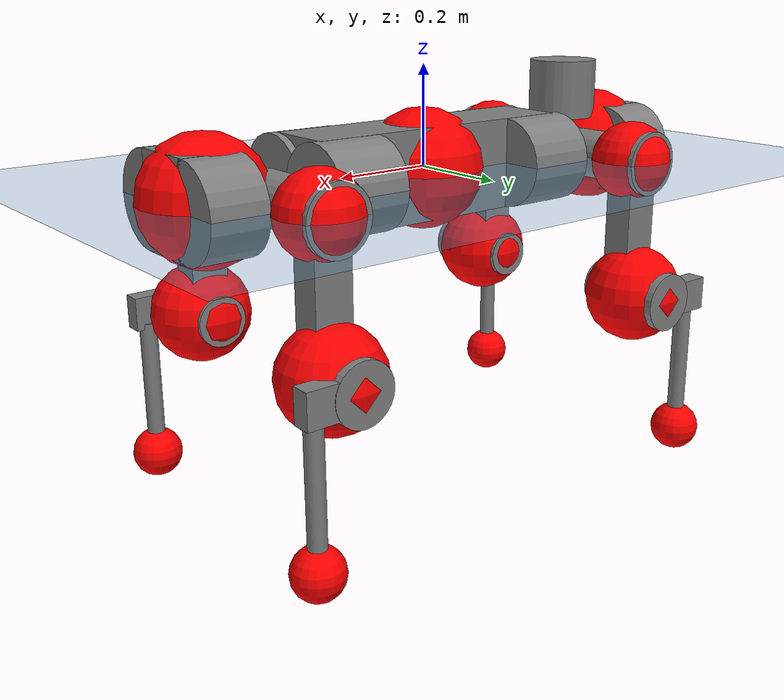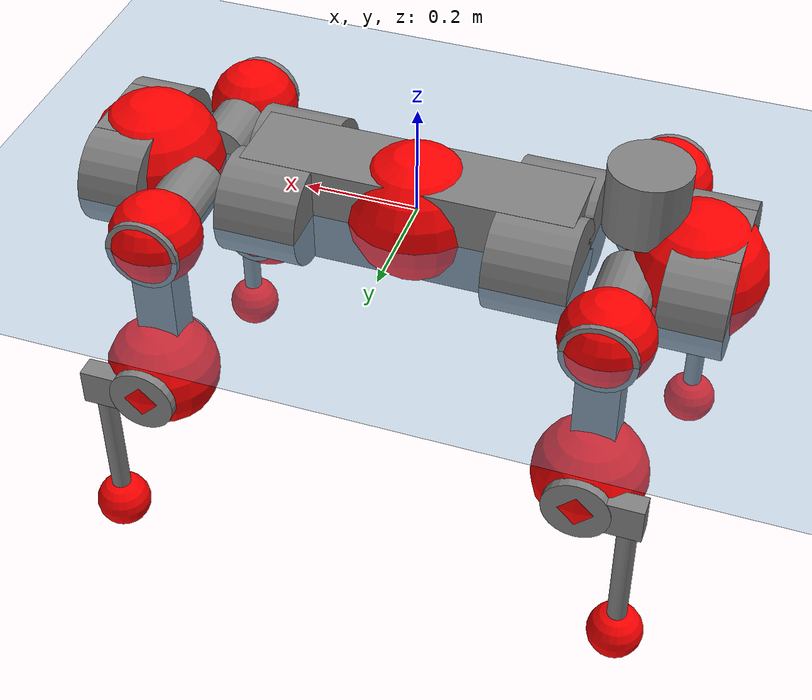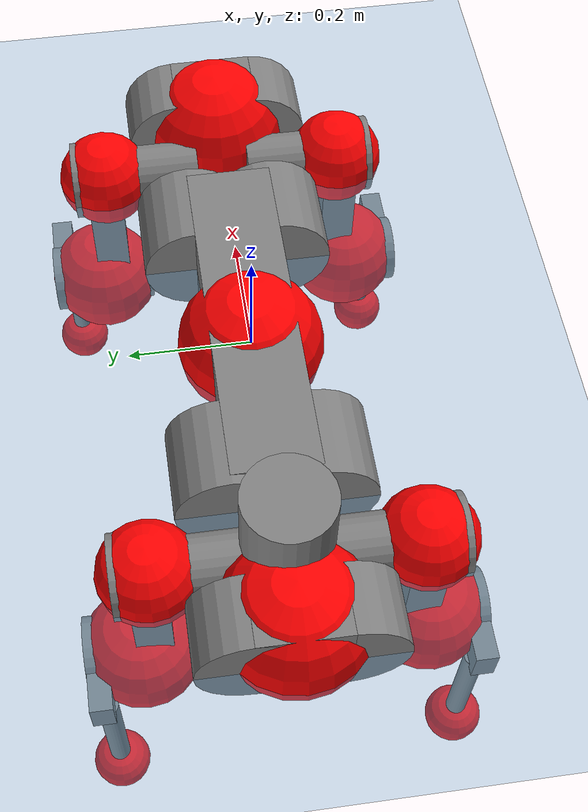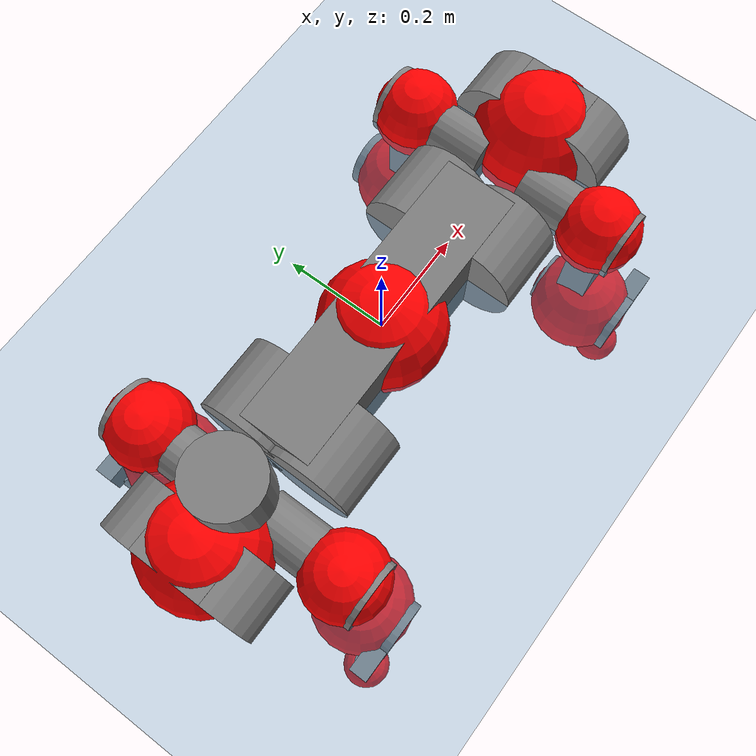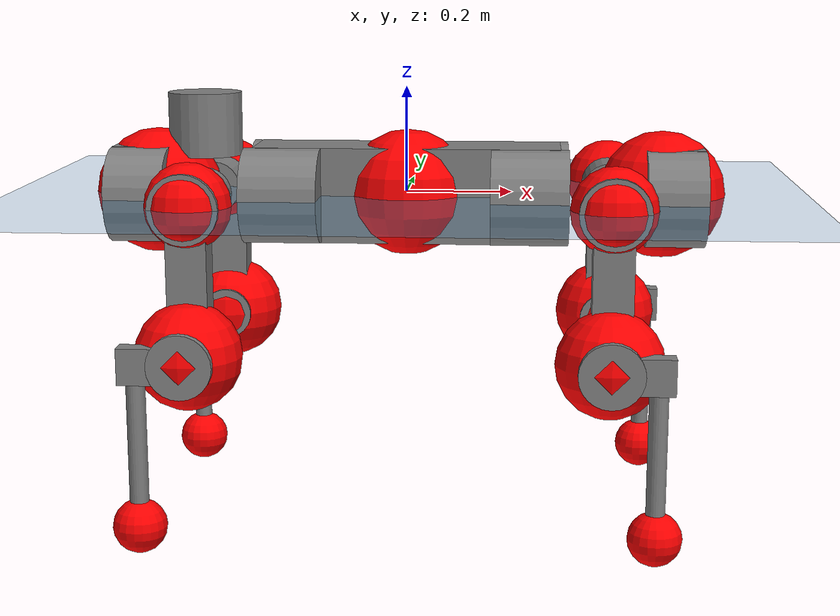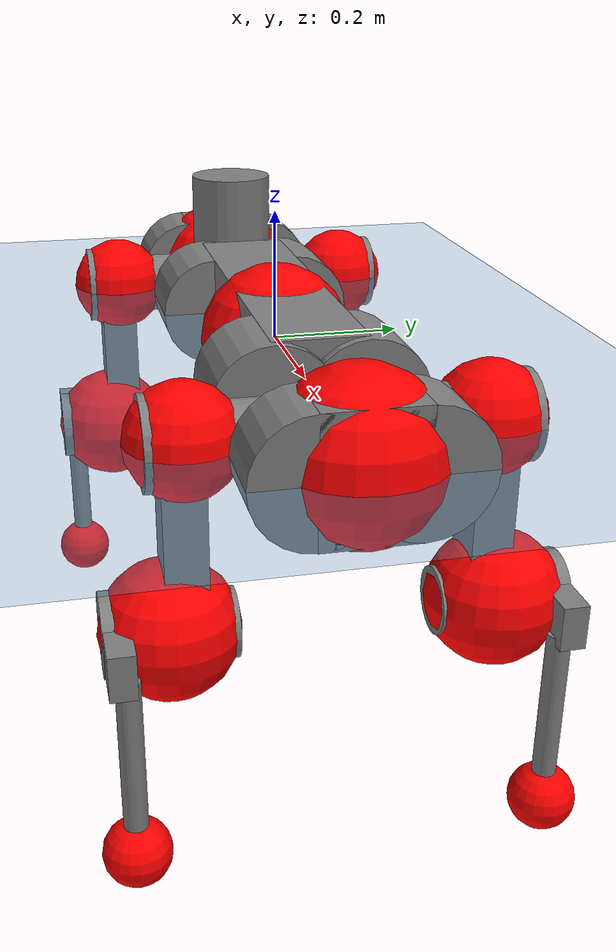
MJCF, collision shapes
<mujoco model="anymal_c">
  <compiler angle="radian" assetdir="assets" balanceinertia="true" inertiafromgeom="false"/>

  <option timestep="0.005" density="1.2" viscosity="2e-05"/>

  <size nkey="1"/>

  <visual>
    <quality shadowsize="8192"/>
    <map shadowclip="0.5"/>
  </visual>

  <default>
    <default class="/">
      <material specular="0" shininess="0.25"/>
      <geom contype="0" conaffinity="0" group="1" solref="-1000 -80"/>
      <site size="0.01 0.005 0.005" group="5"/>
      <general forcelimited="true" forcerange="-80 80" biastype="affine" gainprm="80" biasprm="0 -80 -2"/>
      <default class="anymal_c">
        <joint armature="0.01" damping="0.01" frictionloss="0.1"/>
        <default class="visual">
          <geom type="mesh" group="2"/>
          <default class="visual_zflip"/>
        </default>
        <default class="collision">
          <geom type="cylinder" group="3"/>
          <default class="foot">
            <geom size="0.03 0 0" type="sphere" condim="6" priority="1" friction="0.8 0.02 0.01" solimp="0.015 1 0.03"/>
          </default>
        </default>
      </default>
      <default class="reward_collision_sphere">
        <geom group="5" rgba="1 0 0 1"/>
      </default>
    </default>
  </default>

  <asset>
    <texture type="skybox" colorspace="auto" name="//unnamed_texture_0" builtin="gradient" rgb1="0.95 0.95 0.95" rgb2="0.95 0.95 0.95" width="100" height="600"/>
    <texture type="2d" colorspace="auto" name="texplane" builtin="checker" rgb1="0.345 0.575 0.748" rgb2="0.345 0.575 0.748" markrgb="1 1 1" width="512" height="512"/>
    <texture type="2d" colorspace="linear" name="base" file="base.png"/>
    <texture type="2d" colorspace="linear" name="top_shell" file="top_shell.png"/>
    <texture type="2d" colorspace="linear" name="bottom_shell" file="bottom_shell.png"/>
    <texture type="2d" colorspace="linear" name="remote" file="remote.png"/>
    <texture type="2d" colorspace="linear" name="hatch" file="hatch.png"/>
    <texture type="2d" colorspace="linear" name="handle" file="handle.png"/>
    <texture type="2d" colorspace="linear" name="face" file="face.png"/>
    <texture type="2d" colorspace="linear" name="battery" file="battery.png"/>
    <texture type="2d" colorspace="linear" name="lidar_cage" file="lidar_cage.png"/>
    <texture type="2d" colorspace="linear" name="depth_camera" file="depth_camera.png"/>
    <texture type="2d" colorspace="linear" name="wide_angle_camera" file="wide_angle_camera.png"/>
    <texture type="2d" colorspace="linear" name="lidar" file="lidar.png"/>
    <texture type="2d" colorspace="linear" name="drive" file="drive.png"/>
    <texture type="2d" colorspace="linear" name="hip_l" file="hip_l.png"/>
    <texture type="2d" colorspace="linear" name="shank_l" file="shank_l.png"/>
    <texture type="2d" colorspace="linear" name="foot" file="foot.png"/>
    <texture type="2d" colorspace="linear" name="thigh" file="thigh.png"/>
    <texture type="2d" colorspace="linear" name="shank_r" file="shank_r.png"/>
    <texture type="2d" colorspace="linear" name="hip_r" file="hip_r.png"/>
    <material name="MatPlane" class="/" texture="texplane" texuniform="true" texrepeat="2 2" specular="0.9" shininess="0.5"/>
    <material name="black_plastic" class="/" rgba="0.007 0.007 0.007 1"/>
    <material name="green" class="/" rgba="0.052 0.178 0.033 1"/>
    <material name="red" class="/" rgba="0.178 0.006 0.005 1"/>
    <material name="yellow" class="/" rgba="0.178 0.119 0.006 1"/>
    <material name="lwl" class="/" rgba="0.8 0.8 0.8 1"/>
    <material name="base" class="/" texture="base"/>
    <material name="top_shell" class="/" texture="top_shell"/>
    <material name="bottom_shell" class="/" texture="bottom_shell"/>
    <material name="hip_l" class="/" texture="hip_l"/>
    <material name="thigh" class="/" texture="thigh"/>
    <material name="shank_l" class="/" texture="shank_l"/>
    <material name="foot" class="/" texture="foot"/>
    <material name="hip_r" class="/" texture="hip_r"/>
    <material name="shank" class="/" texture="shank_r"/>
    <material name="hatch" class="/" texture="hatch"/>
    <material name="remote" class="/" texture="remote"/>
    <material name="handle" class="/" texture="handle"/>
    <material name="face" class="/" texture="face"/>
    <material name="depth_camera" class="/" texture="depth_camera"/>
    <material name="wide_angle_camera" class="/" texture="wide_angle_camera"/>
    <material name="battery" class="/" texture="battery"/>
    <material name="lidar_cage" class="/" texture="lidar_cage"/>
    <material name="lidar" class="/" texture="lidar"/>
    <material name="drive" class="/" texture="drive"/>
    <mesh name="base_0" class="/" file="base_0.obj"/>
    <mesh name="base_1" class="/" file="base_1.obj"/>
    <mesh name="base_2" class="/" file="base_2.obj"/>
    <mesh name="base_3" class="/" file="base_3.obj"/>
    <mesh name="base_4" class="/" file="base_4.obj"/>
    <mesh name="base_5" class="/" file="base_5.obj"/>
    <mesh name="top_shell" class="/" file="top_shell.obj"/>
    <mesh name="bottom_shell" class="/" file="bottom_shell.obj"/>
    <mesh name="remote" class="/" file="remote.obj"/>
    <mesh name="handle" class="/" file="handle.obj"/>
    <mesh name="face" class="/" file="face.obj"/>
    <mesh name="wide_angle_camera" class="/" file="wide_angle_camera.obj"/>
    <mesh name="depth_camera" class="/" file="depth_camera.obj"/>
    <mesh name="battery" class="/" file="battery.obj"/>
    <mesh name="lidar_cage" class="/" file="lidar_cage.obj"/>
    <mesh name="lidar" class="/" file="lidar.obj"/>
    <mesh name="drive" class="/" file="drive.obj"/>
    <mesh name="hip_l" class="/" file="hip_l.obj"/>
    <mesh name="thigh" class="/" file="thigh.obj"/>
    <mesh name="shank_l" class="/" file="shank_l.obj"/>
    <mesh name="foot" class="/" file="foot.obj"/>
    <mesh name="hip_r" class="/" file="hip_r.obj"/>
    <mesh name="hatch" class="/" file="hatch.obj"/>
    <mesh name="shank_r" class="/" file="shank_r.obj"/>
  </asset>

  <worldbody>
    <geom name="floor" class="/" size="100 100 0.125" type="plane" group="0" material="MatPlane"/>
    <light name="toplight_shadow" class="/" pos="0 0 5" dir="0.0990148 0.0990148 -0.990148" type="directional" ambient="0.04 0.04 0.04" diffuse="0.55 0.55 0.55" specular="0.12 0.12 0.12"/>
    <light name="toplight_fill" class="/" pos="0 0 5" dir="0.0990148 0.0990148 -0.990148" type="directional" castshadow="false" ambient="0.04 0.04 0.04" diffuse="0.3 0.3 0.3" specular="0.08 0.08 0.08"/>
    <body name="trunk" childclass="anymal_c" pos="0.00205377 0.000513755 -0.0017085" quat="0.999999 -0.000718754 -0.000293373 -0.000988922">
      <inertial pos="0.000238837 0.00115855 0.0477996" quat="0.496364 0.49946 0.502187 0.501967" mass="18.6873" diaginertia="0.903021 0.510678 0.184624"/>
      <joint name="//unnamed_joint_0" type="free" armature="0" damping="0" frictionloss="0"/>
      <geom name="//unnamed_geom_1" class="visual" material="green" mesh="base_0"/>
      <geom name="//unnamed_geom_2" class="visual" material="yellow" mesh="base_1"/>
      <geom name="//unnamed_geom_3" class="visual" material="red" mesh="base_2"/>
      <geom name="//unnamed_geom_4" class="visual" material="black_plastic" mesh="base_3"/>
      <geom name="//unnamed_geom_5" class="visual" material="lwl" mesh="base_4"/>
      <geom name="//unnamed_geom_6" class="visual" material="base" mesh="base_5"/>
      <geom name="trunk_1" class="collision" size="0.290267 0.0700644 0.0900828" type="box"/>
      <geom name="trunk_2" class="collision" size="0.0900828 0.0725667" pos="0.23333 0.0673697 0" quat="0.707107 0 0.707107 0"/>
      <geom name="trunk_3" class="collision" size="0.0900828 0.0725667" pos="-0.23333 0.0673697 0" quat="0.707107 0 0.707107 0"/>
      <geom name="trunk_4" class="collision" size="0.0900828 0.0725667" pos="0.23333 -0.0673697 0" quat="0.707107 0 0.707107 0"/>
      <geom name="trunk_5" class="collision" size="0.0900828 0.0725667" pos="-0.23333 -0.0673697 0" quat="0.707107 0 0.707107 0"/>
      <geom name="//unnamed_geom_12" class="visual" material="top_shell" mesh="top_shell"/>
      <geom name="//unnamed_geom_13" class="visual" material="bottom_shell" mesh="bottom_shell"/>
      <geom name="//unnamed_geom_14" class="visual" material="remote" mesh="remote"/>
      <geom name="//unnamed_geom_15" class="visual" material="handle" mesh="handle"/>
      <geom name="//unnamed_geom_16" class="visual" pos="0.444669 0 0" quat="1 0 0 0" material="face" mesh="face"/>
      <geom name="trunk_6" class="collision" size="0.0550506 0.0700644 0.0900828" pos="0.503672 0 0" type="box"/>
      <geom name="//unnamed_geom_18" class="collision" size="0.0900828 0.0550506" pos="0.503672 0.0673697 0" quat="0.707107 0 0.707107 0"/>
      <geom name="//unnamed_geom_19" class="collision" size="0.0900828 0.0550506" pos="0.503672 -0.0673697 0" quat="0.707107 0 0.707107 0"/>
      <geom name="//unnamed_geom_20" class="visual" pos="0.495246 0 -0.0274527" quat="0.965926 0 0.258819 0" material="depth_camera" mesh="depth_camera"/>
      <geom name="//unnamed_geom_21" class="visual" pos="0.550338 0 0.0144842" material="wide_angle_camera" mesh="wide_angle_camera"/>
      <geom name="//unnamed_geom_22" class="visual_zflip" pos="-0.444669 0 0" quat="0 0 0 1" material="face" mesh="face"/>
      <geom name="trunk_7" class="collision" size="0.0550506 0.0700644 0.0900828" pos="-0.503672 0 0" quat="0 0 0 1" type="box"/>
      <geom name="//unnamed_geom_24" class="collision" size="0.0900828 0.0550506" pos="-0.503672 -0.0673697 0" quat="0 -0.707107 0 0.707107"/>
      <geom name="//unnamed_geom_25" class="collision" size="0.0900828 0.0550506" pos="-0.503672 0.0673697 0" quat="0 -0.707107 0 0.707107"/>
      <geom name="//unnamed_geom_26" class="visual" pos="-0.495246 0 -0.0274527" quat="0 -0.258819 0 0.965926" material="depth_camera" mesh="depth_camera"/>
      <geom name="//unnamed_geom_27" class="visual_zflip" pos="-0.550338 0 0.0144842" quat="0 0 0 1" material="wide_angle_camera" mesh="wide_angle_camera"/>
      <geom name="//unnamed_geom_28" class="visual" material="battery" mesh="battery"/>
      <geom name="//unnamed_geom_29" class="visual" pos="0 0.0721345 0.0289071" quat="0.683013 -0.183013 0.183013 0.683013" material="depth_camera" mesh="depth_camera"/>
      <geom name="//unnamed_geom_30" class="visual" pos="0 -0.0721345 0.0289071" quat="0.683013 0.183013 0.183013 -0.683013" material="depth_camera" mesh="depth_camera"/>
      <geom name="//unnamed_geom_31" class="visual" pos="-0.390493 0 0.071115" quat="1 0 0 0" material="lidar_cage" mesh="lidar_cage"/>
      <geom name="trunk_8" class="collision" size="0.0700644 0.0600552" pos="-0.390493 0 0.129168"/>
      <geom name="//unnamed_geom_33" class="visual" pos="-0.390493 -4.3357e-05 0.137586" quat="0.707107 0 0 -0.707107" material="lidar" mesh="lidar"/>
      <geom name="//unnamed_geom_34" class="visual" pos="0.321728 0.100094 -8.84211e-11" quat="0.258819 0.965926 0 0" material="drive" mesh="drive"/>
      <geom name="//unnamed_geom_35" class="visual" pos="0.321728 -0.100094 8.84211e-11" quat="0.258819 -0.965926 0 0" material="drive" mesh="drive"/>
      <geom name="//unnamed_geom_36" class="visual" pos="-0.321728 0.100094 8.84211e-11" quat="0 0 0.965926 -0.258819" material="drive" mesh="drive"/>
      <geom name="//unnamed_geom_37" class="visual" pos="-0.321728 -0.100094 -8.84211e-11" quat="0 0 -0.965926 -0.258819" material="drive" mesh="drive"/>
      <geom name="//unnamed_geom_38" class="visual" pos="0.124443 0 0.0706312" quat="1 0 0 0" material="hatch" mesh="hatch"/>
      <geom name="//unnamed_geom_39" class="reward_collision_sphere" size="0.12011"/>
      <geom name="//unnamed_geom_40" class="reward_collision_sphere" size="0.12011" pos="0.482753 0 0"/>
      <geom name="//unnamed_geom_41" class="reward_collision_sphere" size="0.12011" pos="-0.482753 0 0"/>
      <site name="imu" pos="0.270401 0.0188179 0.0578575" size="0.0100092"/>
      <camera name="track" pos="0 -1.92485 0" quat="0.707107 0.707107 0 0" mode="trackcom"/>
      <camera name="ego_camera" pos="0.482753 0 -0.038702" quat="-0.5 -0.5 0.5 0.5"/>
      <body name="LF_HIP" pos="0.32207 0.101127 0.000548454" quat="0.25909 0.965853 0.000685814 9.1241e-05">
        <inertial pos="0.0602719 -0.017121 -0.00672969" quat="-0.132154 0.710375 -0.134387 0.678117" mass="2.70541" diaginertia="0.00845894 0.00412736 0.00279483"/>
        <joint name="LF_HAA" pos="0 0 0" axis="0.999925 -0.0110357 0.00530726" range="-0.674656 0.510531" armature="0.00992" damping="0.0198132" frictionloss="0.0984253"/>
        <geom name="//unnamed_geom_42" class="visual" pos="0 -5.20141e-06 8.54328e-07" quat="0.258819 -0.965926 0 0" material="hip_l" mesh="hip_l"/>
        <geom name="//unnamed_geom_43" class="visual" pos="0.0642597 -0.0764131 -0.0441551" quat="0.183013 -0.683013 0.683013 0.183013" material="drive" mesh="drive"/>
        <geom name="//unnamed_geom_44" class="collision" size="0.050046 0.0700644" pos="0.0642597 -0.0115104 -0.00668094" quat="-0.353553 -0.612372 0.612372 -0.353553"/>
        <body name="LF_THIGH" pos="0.0666409 -0.0701386 -0.0379965" quat="0.18393 -0.683319 0.682274 0.1837">
          <inertial pos="0.03608 -0.00245808 -0.240274" quat="0.993171 -0.0051483 -0.0805026 0.0842841" mass="2.98665" diaginertia="0.0424426 0.0236578 0.00350578"/>
          <joint name="LF_HFE" pos="0 0 0" axis="0.999999 -0.00160588 0.000427377" range="-3.11944 3.1449" armature="0.00948895" damping="0.0144823" frictionloss="0.0970336"/>
          <geom name="//unnamed_geom_45" class="visual" pos="0.00219571 3.45992e-06 0" quat="0.707107 0 0 -0.707107" material="thigh" mesh="thigh"/>
          <geom name="//unnamed_geom_46" class="collision" size="0.0650598 0.0400368" pos="0.0429113 0 0" quat="0.5 0.5 -0.5 -0.5"/>
          <geom name="//unnamed_geom_47" class="collision" size="0.0375345 0.0300276 0.141444" pos="0.0321835 0 -0.136728" quat="0.707107 0 0 -0.707107" type="box"/>
          <geom name="//unnamed_geom_48" class="visual" pos="0.1076 0 -0.275752" quat="1 0 0 0" material="drive" mesh="drive"/>
          <geom name="//unnamed_geom_49" class="collision" size="0.050046 0.0700644" pos="0.0325053 0 -0.275752" quat="0.707107 0 0.707107 0"/>
          <geom name="//unnamed_geom_50" class="reward_collision_sphere" size="0.0800736" pos="0.0268196 0 0"/>
          <body name="LF_SHANK" pos="0.106774 -0.00294669 -0.275766" quat="0.999999 0.00121904 -0.000323595 -0.000470935">
            <inertial pos="0.00306294 -0.0591681 -0.0754222" quat="0.99265 -0.118036 -0.0057318 -0.0260934" mass="0.58899" diaginertia="0.014348 0.00806022 0.000973464"/>
            <joint name="LF_KFE" pos="0 0 0" axis="0.999987 -0.0048914 0.00111556" stiffness="0.000498133" range="-3.19146 3.13495" armature="0.0109227" damping="0" frictionloss="0.110259"/>
            <geom name="//unnamed_geom_51" class="visual" pos="0.000715972 0.0038176 0" quat="0.707107 0 0 -0.707107" material="shank_l" mesh="shank_l"/>
            <geom name="LF_kfe_act" class="collision" size="0.0600552 0.0200184" pos="0.0214557 0 0" quat="0.5 0.5 -0.5 -0.5"/>
            <geom name="//unnamed_geom_53" class="collision" size="0.0575519 0.033781 0.0190175" pos="0.0214557 -0.0553385 0" quat="0.5 0.5 -0.5 -0.5" type="box"/>
            <geom name="//unnamed_geom_54" class="visual" pos="0.0139997 -0.083415 -0.327003" quat="0.382683 0 0 -0.92388" material="foot" mesh="foot"/>
            <geom name="LF_calf" class="collision" size="0.0175161 0.141382" pos="0.0139998 -0.0846453 -0.163502" quat="0.707107 0 0 -0.707107"/>
            <geom name="LF_foot" class="foot" size="0.0311094" pos="0.0139998 -0.0846453 -0.305233" quat="0.707107 0 0 -0.707107"/>
            <geom name="//unnamed_geom_57" class="reward_collision_sphere" size="0.100092" pos="-0.0536392 0 0"/>
            <geom name="//unnamed_geom_58" class="reward_collision_sphere" size="0.050046" pos="0.0139998 -0.0846453 -0.305233"/>
            <site name="LF_foot" class="foot" pos="0.0139998 -0.0846453 -0.305233" quat="0.707107 0 0 -0.707107" size="0.0100092"/>
          </body>
        </body>
      </body>
      <body name="RF_HIP" pos="0.321102 -0.0999187 -0.00229545" quat="0.259626 -0.965708 0.00126972 0.00035203">
        <inertial pos="0.06298 0.0124521 -0.00783513" quat="0.122995 0.684784 0.127938 0.706806" mass="2.76047" diaginertia="0.00780846 0.00394741 0.00262416"/>
        <joint name="RF_HAA" pos="0 0 0" axis="0.999966 -0.00423163 0.00708003" range="-0.483881 0.723633" armature="0.0100579" damping="0.00725" frictionloss="0.0862566"/>
        <geom name="//unnamed_geom_59" class="visual" pos="0 5.20137e-06 8.54326e-07" quat="0.258819 0.965926 0 0" material="hip_r" mesh="hip_r"/>
        <geom name="//unnamed_geom_60" class="visual" pos="0.0642597 0.0764131 -0.0441551" quat="0.183013 0.683013 0.683013 -0.183013" material="drive" mesh="drive"/>
        <geom name="//unnamed_geom_61" class="collision" size="0.050046 0.0700644" pos="0.0642597 0.0115104 -0.00668094" quat="-0.353553 0.612372 0.612372 0.353553"/>
        <body name="RF_THIGH" pos="0.064425 0.0674852 -0.0398463" quat="0.182675 0.682825 0.683227 -0.183251">
          <inertial pos="0.0354223 -0.00285096 -0.236591" quat="0.993157 -0.0154758 -0.0729772 0.0898599" mass="3.10326" diaginertia="0.0424311 0.0240023 0.0035885"/>
          <joint name="RF_HFE" pos="0 0 0" axis="0.999998 -0.00111735 -0.00144542" range="-3.12006 3.19596" armature="0.00991606" damping="0.0138467" frictionloss="0.107496"/>
          <geom name="//unnamed_geom_62" class="visual" pos="0.00219571 3.45992e-06 0" quat="0.707107 0 0 -0.707107" material="thigh" mesh="thigh"/>
          <geom name="//unnamed_geom_63" class="collision" size="0.0650598 0.0400368" pos="0.0429113 0 0" quat="0.5 0.5 0.5 0.5"/>
          <geom name="//unnamed_geom_64" class="collision" size="0.0375345 0.0300276 0.141444" pos="0.0321835 0 -0.136728" quat="0.707107 0 0 0.707107" type="box"/>
          <geom name="//unnamed_geom_65" class="visual" pos="0.1076 0 -0.275752" quat="1 0 0 0" material="drive" mesh="drive"/>
          <geom name="//unnamed_geom_66" class="collision" size="0.050046 0.0700644" pos="0.0325053 0 -0.275752" quat="0.707107 0 0.707107 0"/>
          <geom name="//unnamed_geom_67" class="reward_collision_sphere" size="0.0800736" pos="0.0268196 0 0"/>
          <body name="RF_SHANK" pos="0.106997 -0.00262825 -0.276503" quat="1 1.24535e-05 -4.92711e-05 5.38184e-05">
            <inertial pos="0.00589392 0.0586267 -0.0773123" quat="0.993945 0.104957 0.001274 0.0324887" mass="0.591677" diaginertia="0.0144868 0.00764123 0.000918911"/>
            <joint name="RF_KFE" pos="0 0 0" axis="0.999968 -0.00704942 0.00384997" range="-3.15692 3.19094" armature="0.00978204" damping="0.0235794" frictionloss="0.0943876"/>
            <geom name="//unnamed_geom_68" class="visual" pos="0.000715968 -0.00381759 0" quat="0.707107 0 0 0.707107" material="shank" mesh="shank_r"/>
            <geom name="RF_kfe_act" class="collision" size="0.0600552 0.0200184" pos="0.0214557 0 0" quat="0.5 0.5 0.5 0.5"/>
            <geom name="//unnamed_geom_70" class="collision" size="0.0575519 0.033781 0.0190175" pos="0.0214557 0.0553385 0" quat="0.5 0.5 0.5 0.5" type="box"/>
            <geom name="//unnamed_geom_71" class="visual" pos="0.014 0.083415 -0.327003" quat="0.382683 0 0 0.92388" material="foot" mesh="foot"/>
            <geom name="RF_calf" class="collision" size="0.0175161 0.141382" pos="0.0139998 0.0846453 -0.163502" quat="0.707107 0 0 0.707107"/>
            <geom name="RF_foot" class="foot" size="0.0260169" pos="0.0139998 0.0846453 -0.305233" quat="0.707107 0 0 0.707107"/>
            <geom name="//unnamed_geom_74" class="reward_collision_sphere" size="0.100092" pos="-0.0536392 0 0"/>
            <geom name="//unnamed_geom_75" class="reward_collision_sphere" size="0.050046" pos="0.0139998 0.0846453 -0.305233"/>
            <site name="RF_foot" class="foot" pos="0.0139998 0.0846453 -0.305233" quat="0.707107 0 0 0.707107" size="0.0100092"/>
          </body>
        </body>
      </body>
      <body name="LH_HIP" pos="-0.321636 0.100242 -0.00161617" quat="0.000118505 4.87884e-05 0.965964 -0.258676">
        <inertial pos="0.0618906 0.016888 -0.0108953" quat="0.137918 0.683241 0.133904 0.704436" mass="2.84687" diaginertia="0.00816713 0.00400398 0.00285388"/>
        <joint name="LH_HAA" pos="0 0 0" axis="0.999999 0.000813291 0.000747336" stiffness="0.00398555" range="-0.471948 0.677227" armature="0.00870412" damping="0.00962243" frictionloss="0.113457"/>
        <geom name="//unnamed_geom_76" class="visual" pos="0 5.20137e-06 8.54326e-07" quat="-0.258819 -0.965926 0 0" material="hip_r" mesh="hip_r"/>
        <geom name="//unnamed_geom_77" class="visual" pos="0.0642597 0.0764131 -0.0441551" quat="0.183013 0.683013 0.683013 -0.183013" material="drive" mesh="drive"/>
        <geom name="//unnamed_geom_78" class="collision" size="0.050046 0.0700644" pos="0.0642597 0.0115104 -0.00668094" quat="-0.353553 0.612372 0.612372 0.353553"/>
        <body name="LH_THIGH" pos="0.0642495 0.066909 -0.038801" quat="0.18269 0.683194 0.682955 -0.182873">
          <inertial pos="0.0333403 0.000156466 -0.238489" quat="0.99238 -0.00517475 -0.0818384 0.0919685" mass="3.16216" diaginertia="0.0428879 0.0243123 0.003655"/>
          <joint name="LH_HFE" pos="0 0 0" axis="0.999948 -0.0038254 0.00942477" stiffness="0.00925209" range="-3.14588 3.12797" armature="0.0113414" damping="0" frictionloss="0.100155"/>
          <geom name="//unnamed_geom_79" class="visual" pos="0.00219571 3.45992e-06 0" quat="0.707107 0 0 -0.707107" material="thigh" mesh="thigh"/>
          <geom name="//unnamed_geom_80" class="collision" size="0.0650598 0.0400368" pos="0.0429113 0 0" quat="0.5 0.5 -0.5 -0.5"/>
          <geom name="//unnamed_geom_81" class="collision" size="0.0375345 0.0300276 0.141444" pos="0.0321835 0 -0.136728" quat="0.707107 0 0 -0.707107" type="box"/>
          <geom name="//unnamed_geom_82" class="visual" pos="0.1076 0 -0.275752" quat="1 0 0 0" material="drive" mesh="drive"/>
          <geom name="//unnamed_geom_83" class="collision" size="0.050046 0.0700644" pos="0.0325053 0 -0.275752" quat="0.707107 0 0.707107 0"/>
          <geom name="//unnamed_geom_84" class="reward_collision_sphere" size="0.0800736" pos="0.0268196 0 0"/>
          <body name="LH_SHANK" pos="0.107572 -0.000194634 -0.277941" quat="1 0.000249146 -0.000413299 -0.000168898">
            <inertial pos="0.00522431 0.06105 -0.0785055" quat="0.993136 0.113588 0.00892735 0.0264358" mass="0.592685" diaginertia="0.0141355 0.00764904 0.000929034"/>
            <joint name="LH_KFE" pos="0 0 0" axis="0.999939 0.00501712 -0.00980497" range="-3.13818 3.16994" armature="0.0110581" damping="0" frictionloss="0.111652"/>
            <geom name="//unnamed_geom_85" class="visual" pos="0.000715968 -0.00381759 0" quat="-0.707107 0 0 -0.707107" material="shank" mesh="shank_r"/>
            <geom name="LH_kfe_act" class="collision" size="0.0600552 0.0200184" pos="0.0214557 0 0" quat="0.5 0.5 -0.5 -0.5"/>
            <geom name="//unnamed_geom_87" class="collision" size="0.0575519 0.033781 0.0190175" pos="0.0214557 0.0553385 0" quat="0.5 0.5 -0.5 -0.5" type="box"/>
            <geom name="//unnamed_geom_88" class="visual" pos="0.014 0.083415 -0.327003" quat="-0.382683 0 0 -0.92388" material="foot" mesh="foot"/>
            <geom name="LH_calf" class="collision" size="0.0175161 0.141382" pos="0.0139998 0.0846453 -0.163502" quat="0.707107 0 0 -0.707107"/>
            <geom name="LH_foot" class="foot" size="0.0305463" pos="0.0139998 0.0846453 -0.305233" quat="0.707107 0 0 -0.707107"/>
            <geom name="//unnamed_geom_91" class="reward_collision_sphere" size="0.100092" pos="-0.0536392 0 0"/>
            <geom name="//unnamed_geom_92" class="reward_collision_sphere" size="0.050046" pos="0.0139998 0.0846453 -0.305233"/>
            <site name="LH_foot" class="foot" pos="0.0139998 0.0846453 -0.305233" quat="0.707107 0 0 -0.707107" size="0.0100092"/>
          </body>
        </body>
      </body>
      <body name="RH_HIP" pos="-0.321297 -0.102398 -0.000916397" quat="-0.00055292 -0.000503593 -0.965692 -0.259689">
        <inertial pos="0.0630692 -0.0120637 -0.0105299" quat="-0.117685 0.712931 -0.127069 0.67951" mass="2.78476" diaginertia="0.00823281 0.0040328 0.00280568"/>
        <joint name="RH_HAA" pos="0 0 0" axis="0.999934 0.00162975 -0.0113753" stiffness="0.00505048" range="-0.711624 0.471594" armature="0.00907271" damping="0.0154089" frictionloss="0.0955402"/>
        <geom name="//unnamed_geom_93" class="visual" pos="0 -5.20141e-06 8.54328e-07" quat="-0.258819 0.965926 0 0" material="hip_l" mesh="hip_l"/>
        <geom name="//unnamed_geom_94" class="visual" pos="0.0642597 -0.0764131 -0.0441551" quat="-0.183013 0.683013 -0.683013 -0.183013" material="drive" mesh="drive"/>
        <geom name="//unnamed_geom_95" class="collision" size="0.050046 0.0700644" pos="0.0642597 -0.0115104 -0.00668094" quat="0.353553 0.612372 -0.612372 0.353553"/>
        <body name="RH_THIGH" pos="0.0645104 -0.0721532 -0.043058" quat="-0.183016 0.683015 -0.683011 -0.183008">
          <inertial pos="0.0342802 3.0939e-05 -0.237477" quat="0.992871 -0.00548677 -0.0822733 0.0860755" mass="2.96784" diaginertia="0.0434533 0.025439 0.00353366"/>
          <joint name="RH_HFE" pos="0 0 0" axis="0.999999 0.000149945 -0.00170609" stiffness="0.00196574" range="-3.13905 3.19925" armature="0.0104454" damping="0.00908973" frictionloss="0.0956868"/>
          <geom name="//unnamed_geom_96" class="visual" pos="0.00219571 3.45992e-06 0" quat="0.707107 0 0 -0.707107" material="thigh" mesh="thigh"/>
          <geom name="//unnamed_geom_97" class="collision" size="0.0650598 0.0400368" pos="0.0429113 0 0" quat="0.5 0.5 0.5 0.5"/>
          <geom name="//unnamed_geom_98" class="collision" size="0.0375345 0.0300276 0.141444" pos="0.0321835 0 -0.136728" quat="0.707107 0 0 0.707107" type="box"/>
          <geom name="//unnamed_geom_99" class="visual" pos="0.1076 0 -0.275752" quat="1 0 0 0" material="drive" mesh="drive"/>
          <geom name="//unnamed_geom_100" class="collision" size="0.050046 0.0700644" pos="0.0325053 0 -0.275752" quat="0.707107 0 0.707107 0"/>
          <geom name="//unnamed_geom_101" class="reward_collision_sphere" size="0.0800736" pos="0.0268196 0 0"/>
          <body name="RH_SHANK" pos="0.108495 -0.00093459 -0.272751" quat="1 2.89024e-05 4.05656e-05 -0.000156963">
            <inertial pos="0.00321918 -0.0599732 -0.0784737" quat="0.993901 -0.106719 0.00396216 -0.0274858" mass="0.596424" diaginertia="0.0146648 0.0077001 0.000986174"/>
            <joint name="RH_KFE" pos="0 0 0" axis="0.999895 0.0143471 0.00207219" range="-3.12513 3.12646" armature="0.0100658" damping="0.0218569" frictionloss="0.101053"/>
            <geom name="//unnamed_geom_102" class="visual" pos="0.000715972 0.0038176 0" quat="0.707107 0 0 -0.707107" material="shank_l" mesh="shank_l"/>
            <geom name="RH_kfe_act" class="collision" size="0.0600552 0.0200184" pos="0.0214557 0 0" quat="0.5 0.5 0.5 0.5"/>
            <geom name="//unnamed_geom_104" class="collision" size="0.0575519 0.033781 0.0190175" pos="0.0214557 -0.0553385 0" quat="0.5 0.5 0.5 0.5" type="box"/>
            <geom name="//unnamed_geom_105" class="visual" pos="0.0139997 -0.083415 -0.327003" quat="0.382683 0 0 -0.92388" material="foot" mesh="foot"/>
            <geom name="RH_calf" class="collision" size="0.0175161 0.141382" pos="0.0139998 -0.0846453 -0.163502" quat="0.707107 0 0 0.707107"/>
            <geom name="RH_foot" class="foot" size="0.0275003" pos="0.0139998 -0.0846453 -0.305233" quat="0.707107 0 0 0.707107"/>
            <geom name="//unnamed_geom_108" class="reward_collision_sphere" size="0.100092" pos="-0.0536392 0 0"/>
            <geom name="//unnamed_geom_109" class="reward_collision_sphere" size="0.050046" pos="0.0139998 -0.0846453 -0.305233"/>
            <site name="RH_foot" class="foot" pos="0.0139998 -0.0846453 -0.305233" quat="0.707107 0 0 0.707107" size="0.0100092"/>
          </body>
        </body>
      </body>
    </body>
  </worldbody>

  <contact>
    <pair class="/" geom1="floor" geom2="LF_foot" name="//unnamed_contact_0"/>
    <pair class="/" geom1="floor" geom2="RF_foot" name="//unnamed_contact_1"/>
    <pair class="/" geom1="floor" geom2="LH_foot" name="//unnamed_contact_2"/>
    <pair class="/" geom1="floor" geom2="RH_foot" name="//unnamed_contact_3"/>
  </contact>

  <actuator>
    <general name="LF_HAA" class="/" joint="LF_HAA" forcerange="-80.9486 80.9486" gainprm="83.273" biasprm="0 -83.273 -1.97082"/>
    <general name="LF_HFE" class="/" joint="LF_HFE" forcerange="-73.9023 73.9023" gainprm="83.273" biasprm="0 -83.273 -1.97082"/>
    <general name="LF_KFE" class="/" joint="LF_KFE" forcerange="-82.4558 82.4558" gainprm="83.273" biasprm="0 -83.273 -1.97082"/>
    <general name="RF_HAA" class="/" joint="RF_HAA" forcerange="-79.4418 79.4418" gainprm="83.273" biasprm="0 -83.273 -1.97082"/>
    <general name="RF_HFE" class="/" joint="RF_HFE" forcerange="-88.9645 88.9645" gainprm="83.273" biasprm="0 -83.273 -1.97082"/>
    <general name="RF_KFE" class="/" joint="RF_KFE" forcerange="-80.7367 80.7367" gainprm="83.273" biasprm="0 -83.273 -1.97082"/>
    <general name="LH_HAA" class="/" joint="LH_HAA" forcerange="-87.4761 87.4761" gainprm="83.273" biasprm="0 -83.273 -1.97082"/>
    <general name="LH_HFE" class="/" joint="LH_HFE" forcerange="-75.7507 75.7507" gainprm="83.273" biasprm="0 -83.273 -1.97082"/>
    <general name="LH_KFE" class="/" joint="LH_KFE" forcerange="-73.2939 73.2939" gainprm="83.273" biasprm="0 -83.273 -1.97082"/>
    <general name="RH_HAA" class="/" joint="RH_HAA" forcerange="-73.1423 73.1423" gainprm="83.273" biasprm="0 -83.273 -1.97082"/>
    <general name="RH_HFE" class="/" joint="RH_HFE" forcerange="-87.9526 87.9526" gainprm="83.273" biasprm="0 -83.273 -1.97082"/>
    <general name="RH_KFE" class="/" joint="RH_KFE" forcerange="-77.1776 77.1776" gainprm="83.273" biasprm="0 -83.273 -1.97082"/>
  </actuator>

  <sensor>
    <gyro site="imu" name="imu_angular_velocity"/>
    <velocimeter site="imu" name="imu_linear_velocity"/>
    <framelinvel objtype="site" objname="LF_foot" name="LF_foot_global_linear_velocity"/>
    <framelinvel objtype="site" objname="RF_foot" name="RF_foot_global_linear_velocity"/>
    <framelinvel objtype="site" objname="LH_foot" name="LH_foot_global_linear_velocity"/>
    <framelinvel objtype="site" objname="RH_foot" name="RH_foot_global_linear_velocity"/>
  </sensor>

  <keyframe>
    <key name="home" qpos="0 0 0.55 1 0 0 0 0 0.4 -0.8 0 -0.4 0.8 0 -0.4 0.8 0 0.4 -0.8"/>
  </keyframe>
</mujoco>
